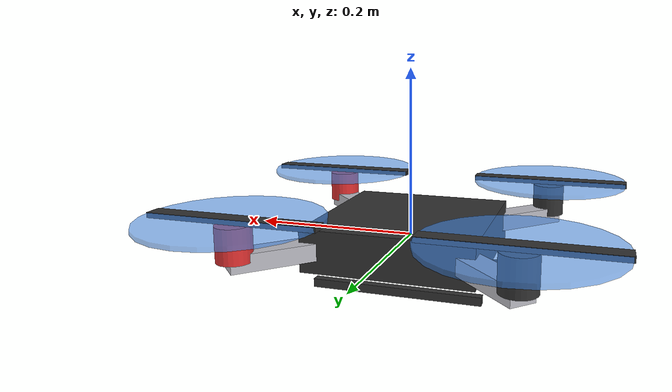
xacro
<?xml version="1.0"?>
<!-- A quadcopter: one body, four motors and four spinning propellers (continuous joints) -->
<robot name="quadcopter" xmlns:xacro="http://www.ros.org/wiki/xacro">
  <xacro:include filename="../../common/urdf/macros.xacro"/>
  <xacro:property name="arm" value="0.15"/>
  <link name="base_link">
    <visual><geometry><box size="0.20 0.20 0.05"/></geometry><material name="dark_grey"/></visual>
    <visual><origin rpy="0 0 ${pi/4}"/><geometry><box size="0.44 0.03 0.02"/></geometry><material name="light_grey"/></visual>
    <visual><origin rpy="0 0 ${-pi/4}"/><geometry><box size="0.44 0.03 0.02"/></geometry><material name="light_grey"/></visual>
    <visual><origin xyz="0 0.06 -0.05"/><geometry><box size="0.20 0.01 0.01"/></geometry><material name="dark_grey"/></visual>
    <visual><origin xyz="0 -0.06 -0.05"/><geometry><box size="0.20 0.01 0.01"/></geometry><material name="dark_grey"/></visual>
    <collision><geometry><box size="0.44 0.44 0.06"/></geometry></collision>
    <xacro:box_inertia m="1.2" x="0.20" y="0.20" z="0.05"/>
  </link>
  <xacro:macro name="rotor" params="name x y color">
    <joint name="motor_${name}_joint" type="fixed">
      <parent link="base_link"/><child link="motor_${name}_link"/><origin xyz="${x*arm} ${y*arm} 0.02"/>
    </joint>
    <link name="motor_${name}_link">
      <visual><geometry><cylinder radius="0.02" length="0.04"/></geometry><material name="${color}"/></visual>
      <collision><geometry><cylinder radius="0.02" length="0.04"/></geometry></collision>
      <xacro:cylinder_inertia m="0.05" r="0.02" h="0.04"/>
    </link>
    <joint name="prop_${name}_joint" type="continuous">
      <parent link="motor_${name}_link"/><child link="prop_${name}_link"/><origin xyz="0 0 0.025"/><axis xyz="0 0 1"/>
    </joint>
    <link name="prop_${name}_link">
      <visual><geometry><cylinder radius="0.10" length="0.005"/></geometry><material name="prop_blue"/></visual>
      <visual><geometry><box size="0.20 0.02 0.006"/></geometry><material name="dark_grey"/></visual>
      <collision><geometry><cylinder radius="0.10" length="0.005"/></geometry></collision>
      <xacro:cylinder_inertia m="0.01" r="0.10" h="0.005"/>
    </link>
  </xacro:macro>
  <xacro:rotor name="front_left" x="1" y="1" color="red"/>
  <xacro:rotor name="front_right" x="1" y="-1" color="red"/>
  <xacro:rotor name="back_left" x="-1" y="1" color="dark_grey"/>
  <xacro:rotor name="back_right" x="-1" y="-1" color="dark_grey"/>
  <joint name="camera_joint" type="fixed">
    <parent link="base_link"/><child link="camera_link"/><origin xyz="0.11 0 -0.02" rpy="0 0.3 0"/>
  </joint>
  <link name="camera_link">
    <visual><geometry><box size="0.03 0.05 0.03"/></geometry><material name="sky_blue"/></visual>
    <collision><geometry><box size="0.03 0.05 0.03"/></geometry></collision>
  </link>
</robot>

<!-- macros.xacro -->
<!-- Shared materials and inertia macros (solid box, cylinder along Z, sphere) -->
<robot xmlns:xacro="http://www.ros.org/wiki/xacro">
  <material name="orange"><color rgba="1.0 0.55 0.0 1.0"/></material>
  <material name="dark_grey"><color rgba="0.2 0.2 0.2 1.0"/></material>
  <material name="light_grey"><color rgba="0.75 0.75 0.78 1.0"/></material>
  <material name="sky_blue"><color rgba="0.3 0.7 1.0 1.0"/></material>
  <material name="green"><color rgba="0.2 0.75 0.35 1.0"/></material>
  <material name="red"><color rgba="0.9 0.2 0.2 1.0"/></material>
  <material name="white"><color rgba="0.95 0.95 0.95 1.0"/></material>
  <material name="prop_blue"><color rgba="0.3 0.6 1.0 0.6"/></material>

  <xacro:macro name="box_inertia" params="m x y z xyz:='0 0 0' rpy:='0 0 0'">
    <inertial>
      <origin xyz="${xyz}" rpy="${rpy}"/>
      <mass value="${m}"/>
      <inertia ixx="${m*(y*y+z*z)/12}" ixy="0" ixz="0" iyy="${m*(x*x+z*z)/12}" iyz="0" izz="${m*(x*x+y*y)/12}"/>
    </inertial>
  </xacro:macro>
  <xacro:macro name="cylinder_inertia" params="m r h xyz:='0 0 0' rpy:='0 0 0'">
    <inertial>
      <origin xyz="${xyz}" rpy="${rpy}"/>
      <mass value="${m}"/>
      <inertia ixx="${m*(3*r*r+h*h)/12}" ixy="0" ixz="0" iyy="${m*(3*r*r+h*h)/12}" iyz="0" izz="${m*r*r/2}"/>
    </inertial>
  </xacro:macro>
  <xacro:macro name="sphere_inertia" params="m r xyz:='0 0 0'">
    <inertial>
      <origin xyz="${xyz}"/>
      <mass value="${m}"/>
      <inertia ixx="${2*m*r*r/5}" ixy="0" ixz="0" iyy="${2*m*r*r/5}" iyz="0" izz="${2*m*r*r/5}"/>
    </inertial>
  </xacro:macro>
</robot>
